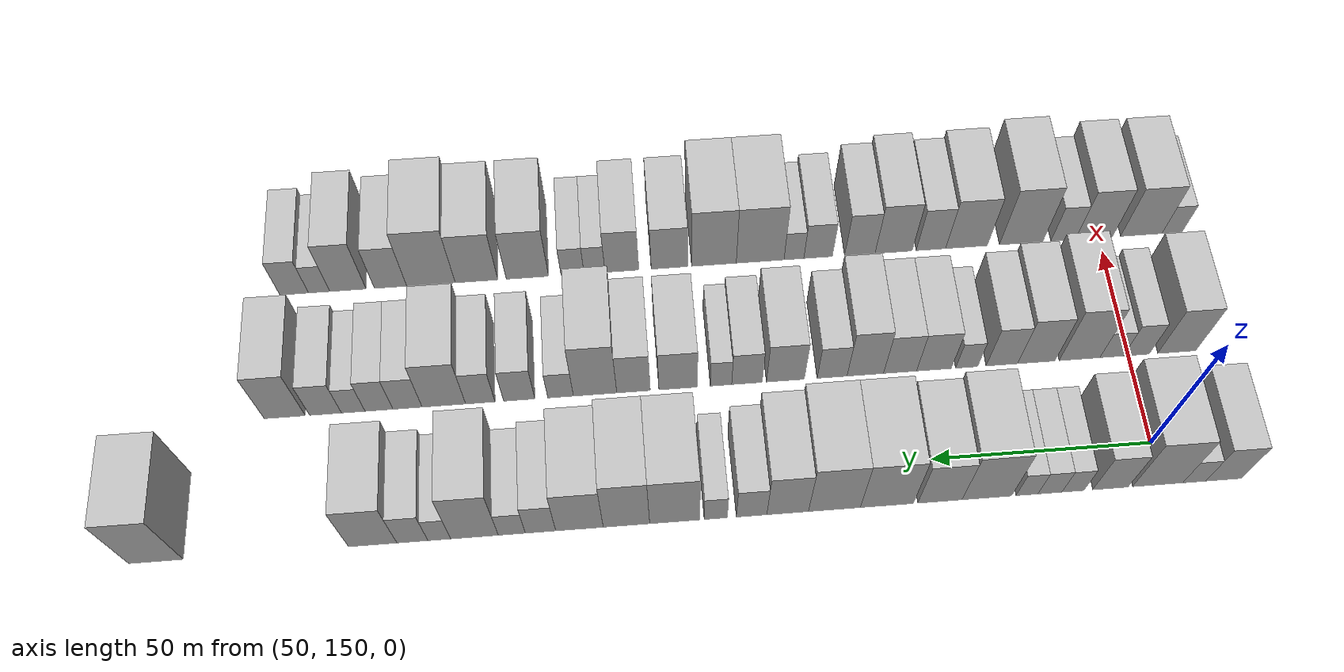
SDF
<sdf version="1.6">
 <world name="default">
  <model name="building_54">
   <static>1</static>
   <pose>50.0000 135.7376 0 0.000000 0.000000 0.000000</pose>
   <link name="link">
    <pose>0 0 9.00 0 0 0</pose>
    <collision name="collision"><geometry><box><size>20.0000 8.0993 18.0000</size></box></geometry></collision>
    <visual name="visual">
     <cast_shadows>0</cast_shadows>
     <geometry><box><size>20.0000 8.0993 18.0000</size></box></geometry>
     <material>
      <script>
       <uri>model://HANNAS_wall/materials/scripts</uri>
       <uri>model://HANNAS_wall/materials/textures</uri>
       <name>vrc/HANNAS_wall</name>
      </script>
     </material>
    </visual>
   </link>
  </model>
  <model name="building_55">
   <static>1</static>
   <pose>50.0000 142.3807 0 0.000000 0.000000 0.000000</pose>
   <link name="link">
    <pose>0 0 6.00 0 0 0</pose>
    <collision name="collision"><geometry><box><size>20.0000 5.1868 12.0000</size></box></geometry></collision>
    <visual name="visual">
     <cast_shadows>0</cast_shadows>
     <geometry><box><size>20.0000 5.1868 12.0000</size></box></geometry>
     <material>
      <script>
       <uri>model://HANNAS_wall/materials/scripts</uri>
       <uri>model://HANNAS_wall/materials/textures</uri>
       <name>vrc/HANNAS_wall</name>
      </script>
     </material>
    </visual>
   </link>
  </model>
  <model name="building_56">
   <static>1</static>
   <pose>50.0000 150.6809 0 0.000000 0.000000 0.000000</pose>
   <link name="link">
    <pose>0 0 12.00 0 0 0</pose>
    <collision name="collision"><geometry><box><size>20.0000 11.4138 24.0000</size></box></geometry></collision>
    <visual name="visual">
     <cast_shadows>0</cast_shadows>
     <geometry><box><size>20.0000 11.4138 24.0000</size></box></geometry>
     <material>
      <script>
       <uri>model://HANNAS_wall/materials/scripts</uri>
       <uri>model://HANNAS_wall/materials/textures</uri>
       <name>vrc/HANNAS_wall</name>
      </script>
     </material>
    </visual>
   </link>
  </model>
  <model name="building_57">
   <static>1</static>
   <pose>50.0000 161.3846 0 0.000000 0.000000 0.000000</pose>
   <link name="link">
    <pose>0 0 9.00 0 0 0</pose>
    <collision name="collision"><geometry><box><size>20.0000 7.9936 18.0000</size></box></geometry></collision>
    <visual name="visual">
     <cast_shadows>0</cast_shadows>
     <geometry><box><size>20.0000 7.9936 18.0000</size></box></geometry>
     <material>
      <script>
       <uri>model://HANNAS_wall/materials/scripts</uri>
       <uri>model://HANNAS_wall/materials/textures</uri>
       <name>vrc/HANNAS_wall</name>
      </script>
     </material>
    </visual>
   </link>
  </model>
  <model name="building_58">
   <static>1</static>
   <pose>50.0000 169.8554 0 0.000000 0.000000 0.000000</pose>
   <link name="link">
    <pose>0 0 6.00 0 0 0</pose>
    <collision name="collision"><geometry><box><size>20.0000 4.9480 12.0000</size></box></geometry></collision>
    <visual name="visual">
     <cast_shadows>0</cast_shadows>
     <geometry><box><size>20.0000 4.9480 12.0000</size></box></geometry>
     <material>
      <script>
       <uri>model://HANNAS_wall/materials/scripts</uri>
       <uri>model://HANNAS_wall/materials/textures</uri>
       <name>vrc/HANNAS_wall</name>
      </script>
     </material>
    </visual>
   </link>
  </model>
  <model name="building_59">
   <static>1</static>
   <pose>50.0000 175.0355 0 0.000000 0.000000 0.000000</pose>
   <link name="link">
    <pose>0 0 6.00 0 0 0</pose>
    <collision name="collision"><geometry><box><size>20.0000 5.4122 12.0000</size></box></geometry></collision>
    <visual name="visual">
     <cast_shadows>0</cast_shadows>
     <geometry><box><size>20.0000 5.4122 12.0000</size></box></geometry>
     <material>
      <script>
       <uri>model://HANNAS_wall/materials/scripts</uri>
       <uri>model://HANNAS_wall/materials/textures</uri>
       <name>vrc/HANNAS_wall</name>
      </script>
     </material>
    </visual>
   </link>
  </model>
  <model name="building_60">
   <static>1</static>
   <pose>50.0000 180.1963 0 0.000000 0.000000 0.000000</pose>
   <link name="link">
    <pose>0 0 6.00 0 0 0</pose>
    <collision name="collision"><geometry><box><size>20.0000 4.9094 12.0000</size></box></geometry></collision>
    <visual name="visual">
     <cast_shadows>0</cast_shadows>
     <geometry><box><size>20.0000 4.9094 12.0000</size></box></geometry>
     <material>
      <script>
       <uri>model://HANNAS_wall/materials/scripts</uri>
       <uri>model://HANNAS_wall/materials/textures</uri>
       <name>vrc/HANNAS_wall</name>
      </script>
     </material>
    </visual>
   </link>
  </model>
  <model name="building_61">
   <static>1</static>
   <pose>50.0000 189.2256 0 0.000000 0.000000 0.000000</pose>
   <link name="link">
    <pose>0 0 12.00 0 0 0</pose>
    <collision name="collision"><geometry><box><size>20.0000 11.1491 24.0000</size></box></geometry></collision>
    <visual name="visual">
     <cast_shadows>0</cast_shadows>
     <geometry><box><size>20.0000 11.1491 24.0000</size></box></geometry>
     <material>
      <script>
       <uri>model://HANNAS_wall/materials/scripts</uri>
       <uri>model://HANNAS_wall/materials/textures</uri>
       <name>vrc/HANNAS_wall</name>
      </script>
     </material>
    </visual>
   </link>
  </model>
  <model name="building_62">
   <static>1</static>
   <pose>50.0000 199.7369 0 0.000000 0.000000 0.000000</pose>
   <link name="link">
    <pose>0 0 10.50 0 0 0</pose>
    <collision name="collision"><geometry><box><size>20.0000 9.8735 21.0000</size></box></geometry></collision>
    <visual name="visual">
     <cast_shadows>0</cast_shadows>
     <geometry><box><size>20.0000 9.8735 21.0000</size></box></geometry>
     <material>
      <script>
       <uri>model://HANNAS_wall/materials/scripts</uri>
       <uri>model://HANNAS_wall/materials/textures</uri>
       <name>vrc/HANNAS_wall</name>
      </script>
     </material>
    </visual>
   </link>
  </model>
  <model name="building_63">
   <static>1</static>
   <pose>50.0000 211.5797 0 0.000000 0.000000 0.000000</pose>
   <link name="link">
    <pose>0 0 12.00 0 0 0</pose>
    <collision name="collision"><geometry><box><size>20.0000 11.8122 24.0000</size></box></geometry></collision>
    <visual name="visual">
     <cast_shadows>0</cast_shadows>
     <geometry><box><size>20.0000 11.8122 24.0000</size></box></geometry>
     <material>
      <script>
       <uri>model://HANNAS_wall/materials/scripts</uri>
       <uri>model://HANNAS_wall/materials/textures</uri>
       <name>vrc/HANNAS_wall</name>
      </script>
     </material>
    </visual>
   </link>
  </model>
  <model name="building_64">
   <static>1</static>
   <pose>50.0000 223.2693 0 0.000000 0.000000 0.000000</pose>
   <link name="link">
    <pose>0 0 12.00 0 0 0</pose>
    <collision name="collision"><geometry><box><size>20.0000 11.5669 24.0000</size></box></geometry></collision>
    <visual name="visual">
     <cast_shadows>0</cast_shadows>
     <geometry><box><size>20.0000 11.5669 24.0000</size></box></geometry>
     <material>
      <script>
       <uri>model://HANNAS_wall/materials/scripts</uri>
       <uri>model://HANNAS_wall/materials/textures</uri>
       <name>vrc/HANNAS_wall</name>
      </script>
     </material>
    </visual>
   </link>
  </model>
  <model name="building_65">
   <static>1</static>
   <pose>50.0000 233.6656 0 0.000000 0.000000 0.000000</pose>
   <link name="link">
    <pose>0 0 10.50 0 0 0</pose>
    <collision name="collision"><geometry><box><size>20.0000 9.2259 21.0000</size></box></geometry></collision>
    <visual name="visual">
     <cast_shadows>0</cast_shadows>
     <geometry><box><size>20.0000 9.2259 21.0000</size></box></geometry>
     <material>
      <script>
       <uri>model://HANNAS_wall/materials/scripts</uri>
       <uri>model://HANNAS_wall/materials/textures</uri>
       <name>vrc/HANNAS_wall</name>
      </script>
     </material>
    </visual>
   </link>
  </model>
  <model name="building_66">
   <static>1</static>
   <pose>50.0000 241.6552 0 0.000000 0.000000 0.000000</pose>
   <link name="link">
    <pose>0 0 7.50 0 0 0</pose>
    <collision name="collision"><geometry><box><size>20.0000 6.7533 15.0000</size></box></geometry></collision>
    <visual name="visual">
     <cast_shadows>0</cast_shadows>
     <geometry><box><size>20.0000 6.7533 15.0000</size></box></geometry>
     <material>
      <script>
       <uri>model://HANNAS_wall/materials/scripts</uri>
       <uri>model://HANNAS_wall/materials/textures</uri>
       <name>vrc/HANNAS_wall</name>
      </script>
     </material>
    </visual>
   </link>
  </model>
  <model name="building_67">
   <static>1</static>
   <pose>50.0000 249.5808 0 0.000000 0.000000 0.000000</pose>
   <link name="link">
    <pose>0 0 6.00 0 0 0</pose>
    <collision name="collision"><geometry><box><size>20.0000 5.0978 12.0000</size></box></geometry></collision>
    <visual name="visual">
     <cast_shadows>0</cast_shadows>
     <geometry><box><size>20.0000 5.0978 12.0000</size></box></geometry>
     <material>
      <script>
       <uri>model://HANNAS_wall/materials/scripts</uri>
       <uri>model://HANNAS_wall/materials/textures</uri>
       <name>vrc/HANNAS_wall</name>
      </script>
     </material>
    </visual>
   </link>
  </model>
  <model name="building_68">
   <static>1</static>
   <pose>50.0000 258.6403 0 0.000000 0.000000 0.000000</pose>
   <link name="link">
    <pose>0 0 12.00 0 0 0</pose>
    <collision name="collision"><geometry><box><size>20.0000 11.0211 24.0000</size></box></geometry></collision>
    <visual name="visual">
     <cast_shadows>0</cast_shadows>
     <geometry><box><size>20.0000 11.0211 24.0000</size></box></geometry>
     <material>
      <script>
       <uri>model://HANNAS_wall/materials/scripts</uri>
       <uri>model://HANNAS_wall/materials/textures</uri>
       <name>vrc/HANNAS_wall</name>
      </script>
     </material>
    </visual>
   </link>
  </model>
  <model name="building_69">
   <static>1</static>
   <pose>50.0000 269.2612 0 0.000000 0.000000 0.000000</pose>
   <link name="link">
    <pose>0 0 12.00 0 0 0</pose>
    <collision name="collision"><geometry><box><size>20.0000 10.2207 24.0000</size></box></geometry></collision>
    <visual name="visual">
     <cast_shadows>0</cast_shadows>
     <geometry><box><size>20.0000 10.2207 24.0000</size></box></geometry>
     <material>
      <script>
       <uri>model://HANNAS_wall/materials/scripts</uri>
       <uri>model://HANNAS_wall/materials/textures</uri>
       <name>vrc/HANNAS_wall</name>
      </script>
     </material>
    </visual>
   </link>
  </model>
  <model name="building_70">
   <static>1</static>
   <pose>50.0000 279.5826 0 0.000000 0.000000 0.000000</pose>
   <link name="link">
    <pose>0 0 10.50 0 0 0</pose>
    <collision name="collision"><geometry><box><size>20.0000 10.4221 21.0000</size></box></geometry></collision>
    <visual name="visual">
     <cast_shadows>0</cast_shadows>
     <geometry><box><size>20.0000 10.4221 21.0000</size></box></geometry>
     <material>
      <script>
       <uri>model://HANNAS_wall/materials/scripts</uri>
       <uri>model://HANNAS_wall/materials/textures</uri>
       <name>vrc/HANNAS_wall</name>
      </script>
     </material>
    </visual>
   </link>
  </model>
  <model name="building_71">
   <static>1</static>
   <pose>50.0000 288.1135 0 0.000000 0.000000 0.000000</pose>
   <link name="link">
    <pose>0 0 7.50 0 0 0</pose>
    <collision name="collision"><geometry><box><size>20.0000 6.6397 15.0000</size></box></geometry></collision>
    <visual name="visual">
     <cast_shadows>0</cast_shadows>
     <geometry><box><size>20.0000 6.6397 15.0000</size></box></geometry>
     <material>
      <script>
       <uri>model://HANNAS_wall/materials/scripts</uri>
       <uri>model://HANNAS_wall/materials/textures</uri>
       <name>vrc/HANNAS_wall</name>
      </script>
     </material>
    </visual>
   </link>
  </model>
  <model name="building_72">
   <static>1</static>
   <pose>50.0000 294.3930 0 0.000000 0.000000 0.000000</pose>
   <link name="link">
    <pose>0 0 6.00 0 0 0</pose>
    <collision name="collision"><geometry><box><size>20.0000 5.9195 12.0000</size></box></geometry></collision>
    <visual name="visual">
     <cast_shadows>0</cast_shadows>
     <geometry><box><size>20.0000 5.9195 12.0000</size></box></geometry>
     <material>
      <script>
       <uri>model://HANNAS_wall/materials/scripts</uri>
       <uri>model://HANNAS_wall/materials/textures</uri>
       <name>vrc/HANNAS_wall</name>
      </script>
     </material>
    </visual>
   </link>
  </model>
  <model name="building_73">
   <static>1</static>
   <pose>50.0000 302.5616 0 0.000000 0.000000 0.000000</pose>
   <link name="link">
    <pose>0 0 12.00 0 0 0</pose>
    <collision name="collision"><geometry><box><size>20.0000 10.4178 24.0000</size></box></geometry></collision>
    <visual name="visual">
     <cast_shadows>0</cast_shadows>
     <geometry><box><size>20.0000 10.4178 24.0000</size></box></geometry>
     <material>
      <script>
       <uri>model://HANNAS_wall/materials/scripts</uri>
       <uri>model://HANNAS_wall/materials/textures</uri>
       <name>vrc/HANNAS_wall</name>
      </script>
     </material>
    </visual>
   </link>
  </model>
  <model name="building_74">
   <static>1</static>
   <pose>50.0000 310.2300 0 0.000000 0.000000 0.000000</pose>
   <link name="link">
    <pose>0 0 6.00 0 0 0</pose>
    <collision name="collision"><geometry><box><size>20.0000 4.9190 12.0000</size></box></geometry></collision>
    <visual name="visual">
     <cast_shadows>0</cast_shadows>
     <geometry><box><size>20.0000 4.9190 12.0000</size></box></geometry>
     <material>
      <script>
       <uri>model://HANNAS_wall/materials/scripts</uri>
       <uri>model://HANNAS_wall/materials/textures</uri>
       <name>vrc/HANNAS_wall</name>
      </script>
     </material>
    </visual>
   </link>
  </model>
  <model name="building_75">
   <static>1</static>
   <pose>50.0000 316.0661 0 0.000000 0.000000 0.000000</pose>
   <link name="link">
    <pose>0 0 7.50 0 0 0</pose>
    <collision name="collision"><geometry><box><size>20.0000 6.7531 15.0000</size></box></geometry></collision>
    <visual name="visual">
     <cast_shadows>0</cast_shadows>
     <geometry><box><size>20.0000 6.7531 15.0000</size></box></geometry>
     <material>
      <script>
       <uri>model://HANNAS_wall/materials/scripts</uri>
       <uri>model://HANNAS_wall/materials/textures</uri>
       <name>vrc/HANNAS_wall</name>
      </script>
     </material>
    </visual>
   </link>
  </model>
  <model name="building_76">
   <static>1</static>
   <pose>50.0000 324.6897 0 0.000000 0.000000 0.000000</pose>
   <link name="link">
    <pose>0 0 10.50 0 0 0</pose>
    <collision name="collision"><geometry><box><size>20.0000 10.4943 21.0000</size></box></geometry></collision>
    <visual name="visual">
     <cast_shadows>0</cast_shadows>
     <geometry><box><size>20.0000 10.4943 21.0000</size></box></geometry>
     <material>
      <script>
       <uri>model://HANNAS_wall/materials/scripts</uri>
       <uri>model://HANNAS_wall/materials/textures</uri>
       <name>vrc/HANNAS_wall</name>
      </script>
     </material>
    </visual>
   </link>
  </model>
  <model name="building_77">
   <static>1</static>
   <pose>50.0000 371.5125 0 0.000000 0.000000 0.000000</pose>
   <link name="link">
    <pose>0 0 12.00 0 0 0</pose>
    <collision name="collision"><geometry><box><size>20.0000 11.7171 24.0000</size></box></geometry></collision>
    <visual name="visual">
     <cast_shadows>0</cast_shadows>
     <geometry><box><size>20.0000 11.7171 24.0000</size></box></geometry>
     <material>
      <script>
       <uri>model://HANNAS_wall/materials/scripts</uri>
       <uri>model://HANNAS_wall/materials/textures</uri>
       <name>vrc/HANNAS_wall</name>
      </script>
     </material>
    </visual>
   </link>
  </model>
  <model name="building_128">
   <static>1</static>
   <pose>82.0000 138.5199 0 0.000000 0.000000 0.000000</pose>
   <link name="link">
    <pose>0 0 10.50 0 0 0</pose>
    <collision name="collision"><geometry><box><size>20.0000 9.0458 21.0000</size></box></geometry></collision>
    <visual name="visual">
     <cast_shadows>0</cast_shadows>
     <geometry><box><size>20.0000 9.0458 21.0000</size></box></geometry>
     <material>
      <script>
       <uri>model://HANNAS_wall/materials/scripts</uri>
       <uri>model://HANNAS_wall/materials/textures</uri>
       <name>vrc/HANNAS_wall</name>
      </script>
     </material>
    </visual>
   </link>
  </model>
  <model name="building_129">
   <static>1</static>
   <pose>82.0000 148.0989 0 0.000000 0.000000 0.000000</pose>
   <link name="link">
    <pose>0 0 7.50 0 0 0</pose>
    <collision name="collision"><geometry><box><size>20.0000 6.1123 15.0000</size></box></geometry></collision>
    <visual name="visual">
     <cast_shadows>0</cast_shadows>
     <geometry><box><size>20.0000 6.1123 15.0000</size></box></geometry>
     <material>
      <script>
       <uri>model://HANNAS_wall/materials/scripts</uri>
       <uri>model://HANNAS_wall/materials/textures</uri>
       <name>vrc/HANNAS_wall</name>
      </script>
     </material>
    </visual>
   </link>
  </model>
  <model name="building_130">
   <static>1</static>
   <pose>82.0000 153.9497 0 0.000000 0.000000 0.000000</pose>
   <link name="link">
    <pose>0 0 6.00 0 0 0</pose>
    <collision name="collision"><geometry><box><size>20.0000 5.5893 12.0000</size></box></geometry></collision>
    <visual name="visual">
     <cast_shadows>0</cast_shadows>
     <geometry><box><size>20.0000 5.5893 12.0000</size></box></geometry>
     <material>
      <script>
       <uri>model://HANNAS_wall/materials/scripts</uri>
       <uri>model://HANNAS_wall/materials/textures</uri>
       <name>vrc/HANNAS_wall</name>
      </script>
     </material>
    </visual>
   </link>
  </model>
  <model name="building_131">
   <static>1</static>
   <pose>82.0000 161.5656 0 0.000000 0.000000 0.000000</pose>
   <link name="link">
    <pose>0 0 12.00 0 0 0</pose>
    <collision name="collision"><geometry><box><size>20.0000 9.6425 24.0000</size></box></geometry></collision>
    <visual name="visual">
     <cast_shadows>0</cast_shadows>
     <geometry><box><size>20.0000 9.6425 24.0000</size></box></geometry>
     <material>
      <script>
       <uri>model://HANNAS_wall/materials/scripts</uri>
       <uri>model://HANNAS_wall/materials/textures</uri>
       <name>vrc/HANNAS_wall</name>
      </script>
     </material>
    </visual>
   </link>
  </model>
  <model name="building_132">
   <static>1</static>
   <pose>82.0000 171.7931 0 0.000000 0.000000 0.000000</pose>
   <link name="link">
    <pose>0 0 10.50 0 0 0</pose>
    <collision name="collision"><geometry><box><size>20.0000 8.8125 21.0000</size></box></geometry></collision>
    <visual name="visual">
     <cast_shadows>0</cast_shadows>
     <geometry><box><size>20.0000 8.8125 21.0000</size></box></geometry>
     <material>
      <script>
       <uri>model://HANNAS_wall/materials/scripts</uri>
       <uri>model://HANNAS_wall/materials/textures</uri>
       <name>vrc/HANNAS_wall</name>
      </script>
     </material>
    </visual>
   </link>
  </model>
  <model name="building_133">
   <static>1</static>
   <pose>82.0000 179.9020 0 0.000000 0.000000 0.000000</pose>
   <link name="link">
    <pose>0 0 9.00 0 0 0</pose>
    <collision name="collision"><geometry><box><size>20.0000 7.4052 18.0000</size></box></geometry></collision>
    <visual name="visual">
     <cast_shadows>0</cast_shadows>
     <geometry><box><size>20.0000 7.4052 18.0000</size></box></geometry>
     <material>
      <script>
       <uri>model://HANNAS_wall/materials/scripts</uri>
       <uri>model://HANNAS_wall/materials/textures</uri>
       <name>vrc/HANNAS_wall</name>
      </script>
     </material>
    </visual>
   </link>
  </model>
  <model name="building_134">
   <static>1</static>
   <pose>82.0000 188.2013 0 0.000000 0.000000 0.000000</pose>
   <link name="link">
    <pose>0 0 6.00 0 0 0</pose>
    <collision name="collision"><geometry><box><size>20.0000 5.1934 12.0000</size></box></geometry></collision>
    <visual name="visual">
     <cast_shadows>0</cast_shadows>
     <geometry><box><size>20.0000 5.1934 12.0000</size></box></geometry>
     <material>
      <script>
       <uri>model://HANNAS_wall/materials/scripts</uri>
       <uri>model://HANNAS_wall/materials/textures</uri>
       <name>vrc/HANNAS_wall</name>
      </script>
     </material>
    </visual>
   </link>
  </model>
  <model name="building_135">
   <static>1</static>
   <pose>82.0000 195.8727 0 0.000000 0.000000 0.000000</pose>
   <link name="link">
    <pose>0 0 9.00 0 0 0</pose>
    <collision name="collision"><geometry><box><size>20.0000 8.1493 18.0000</size></box></geometry></collision>
    <visual name="visual">
     <cast_shadows>0</cast_shadows>
     <geometry><box><size>20.0000 8.1493 18.0000</size></box></geometry>
     <material>
      <script>
       <uri>model://HANNAS_wall/materials/scripts</uri>
       <uri>model://HANNAS_wall/materials/textures</uri>
       <name>vrc/HANNAS_wall</name>
      </script>
     </material>
    </visual>
   </link>
  </model>
  <model name="building_136">
   <static>1</static>
   <pose>82.0000 203.8156 0 0.000000 0.000000 0.000000</pose>
   <link name="link">
    <pose>0 0 9.00 0 0 0</pose>
    <collision name="collision"><geometry><box><size>20.0000 7.7365 18.0000</size></box></geometry></collision>
    <visual name="visual">
     <cast_shadows>0</cast_shadows>
     <geometry><box><size>20.0000 7.7365 18.0000</size></box></geometry>
     <material>
      <script>
       <uri>model://HANNAS_wall/materials/scripts</uri>
       <uri>model://HANNAS_wall/materials/textures</uri>
       <name>vrc/HANNAS_wall</name>
      </script>
     </material>
    </visual>
   </link>
  </model>
  <model name="building_137">
   <static>1</static>
   <pose>82.0000 211.9540 0 0.000000 0.000000 0.000000</pose>
   <link name="link">
    <pose>0 0 10.50 0 0 0</pose>
    <collision name="collision"><geometry><box><size>20.0000 8.5403 21.0000</size></box></geometry></collision>
    <visual name="visual">
     <cast_shadows>0</cast_shadows>
     <geometry><box><size>20.0000 8.5403 21.0000</size></box></geometry>
     <material>
      <script>
       <uri>model://HANNAS_wall/materials/scripts</uri>
       <uri>model://HANNAS_wall/materials/textures</uri>
       <name>vrc/HANNAS_wall</name>
      </script>
     </material>
    </visual>
   </link>
  </model>
  <model name="building_138">
   <static>1</static>
   <pose>82.0000 219.7043 0 0.000000 0.000000 0.000000</pose>
   <link name="link">
    <pose>0 0 7.50 0 0 0</pose>
    <collision name="collision"><geometry><box><size>20.0000 6.9603 15.0000</size></box></geometry></collision>
    <visual name="visual">
     <cast_shadows>0</cast_shadows>
     <geometry><box><size>20.0000 6.9603 15.0000</size></box></geometry>
     <material>
      <script>
       <uri>model://HANNAS_wall/materials/scripts</uri>
       <uri>model://HANNAS_wall/materials/textures</uri>
       <name>vrc/HANNAS_wall</name>
      </script>
     </material>
    </visual>
   </link>
  </model>
  <model name="building_139">
   <static>1</static>
   <pose>82.0000 230.5792 0 0.000000 0.000000 0.000000</pose>
   <link name="link">
    <pose>0 0 9.00 0 0 0</pose>
    <collision name="collision"><geometry><box><size>20.0000 8.7895 18.0000</size></box></geometry></collision>
    <visual name="visual">
     <cast_shadows>0</cast_shadows>
     <geometry><box><size>20.0000 8.7895 18.0000</size></box></geometry>
     <material>
      <script>
       <uri>model://HANNAS_wall/materials/scripts</uri>
       <uri>model://HANNAS_wall/materials/textures</uri>
       <name>vrc/HANNAS_wall</name>
      </script>
     </material>
    </visual>
   </link>
  </model>
  <model name="building_140">
   <static>1</static>
   <pose>82.0000 239.5101 0 0.000000 0.000000 0.000000</pose>
   <link name="link">
    <pose>0 0 7.50 0 0 0</pose>
    <collision name="collision"><geometry><box><size>20.0000 7.0722 15.0000</size></box></geometry></collision>
    <visual name="visual">
     <cast_shadows>0</cast_shadows>
     <geometry><box><size>20.0000 7.0722 15.0000</size></box></geometry>
     <material>
      <script>
       <uri>model://HANNAS_wall/materials/scripts</uri>
       <uri>model://HANNAS_wall/materials/textures</uri>
       <name>vrc/HANNAS_wall</name>
      </script>
     </material>
    </visual>
   </link>
  </model>
  <model name="building_141">
   <static>1</static>
   <pose>82.0000 245.5180 0 0.000000 0.000000 0.000000</pose>
   <link name="link">
    <pose>0 0 6.00 0 0 0</pose>
    <collision name="collision"><geometry><box><size>20.0000 4.9435 12.0000</size></box></geometry></collision>
    <visual name="visual">
     <cast_shadows>0</cast_shadows>
     <geometry><box><size>20.0000 4.9435 12.0000</size></box></geometry>
     <material>
      <script>
       <uri>model://HANNAS_wall/materials/scripts</uri>
       <uri>model://HANNAS_wall/materials/textures</uri>
       <name>vrc/HANNAS_wall</name>
      </script>
     </material>
    </visual>
   </link>
  </model>
  <model name="building_142">
   <static>1</static>
   <pose>82.0000 255.4361 0 0.000000 0.000000 0.000000</pose>
   <link name="link">
    <pose>0 0 9.00 0 0 0</pose>
    <collision name="collision"><geometry><box><size>20.0000 8.8928 18.0000</size></box></geometry></collision>
    <visual name="visual">
     <cast_shadows>0</cast_shadows>
     <geometry><box><size>20.0000 8.8928 18.0000</size></box></geometry>
     <material>
      <script>
       <uri>model://HANNAS_wall/materials/scripts</uri>
       <uri>model://HANNAS_wall/materials/textures</uri>
       <name>vrc/HANNAS_wall</name>
      </script>
     </material>
    </visual>
   </link>
  </model>
  <model name="building_143">
   <static>1</static>
   <pose>82.0000 265.7482 0 0.000000 0.000000 0.000000</pose>
   <link name="link">
    <pose>0 0 9.00 0 0 0</pose>
    <collision name="collision"><geometry><box><size>20.0000 7.7314 18.0000</size></box></geometry></collision>
    <visual name="visual">
     <cast_shadows>0</cast_shadows>
     <geometry><box><size>20.0000 7.7314 18.0000</size></box></geometry>
     <material>
      <script>
       <uri>model://HANNAS_wall/materials/scripts</uri>
       <uri>model://HANNAS_wall/materials/textures</uri>
       <name>vrc/HANNAS_wall</name>
      </script>
     </material>
    </visual>
   </link>
  </model>
  <model name="building_144">
   <static>1</static>
   <pose>82.0000 274.6100 0 0.000000 0.000000 0.000000</pose>
   <link name="link">
    <pose>0 0 12.00 0 0 0</pose>
    <collision name="collision"><geometry><box><size>20.0000 9.9922 24.0000</size></box></geometry></collision>
    <visual name="visual">
     <cast_shadows>0</cast_shadows>
     <geometry><box><size>20.0000 9.9922 24.0000</size></box></geometry>
     <material>
      <script>
       <uri>model://HANNAS_wall/materials/scripts</uri>
       <uri>model://HANNAS_wall/materials/textures</uri>
       <name>vrc/HANNAS_wall</name>
      </script>
     </material>
    </visual>
   </link>
  </model>
  <model name="building_145">
   <static>1</static>
   <pose>82.0000 282.5368 0 0.000000 0.000000 0.000000</pose>
   <link name="link">
    <pose>0 0 6.00 0 0 0</pose>
    <collision name="collision"><geometry><box><size>20.0000 5.8615 12.0000</size></box></geometry></collision>
    <visual name="visual">
     <cast_shadows>0</cast_shadows>
     <geometry><box><size>20.0000 5.8615 12.0000</size></box></geometry>
     <material>
      <script>
       <uri>model://HANNAS_wall/materials/scripts</uri>
       <uri>model://HANNAS_wall/materials/textures</uri>
       <name>vrc/HANNAS_wall</name>
      </script>
     </material>
    </visual>
   </link>
  </model>
  <model name="building_146">
   <static>1</static>
   <pose>82.0000 292.0342 0 0.000000 0.000000 0.000000</pose>
   <link name="link">
    <pose>0 0 7.50 0 0 0</pose>
    <collision name="collision"><geometry><box><size>20.0000 7.1332 15.0000</size></box></geometry></collision>
    <visual name="visual">
     <cast_shadows>0</cast_shadows>
     <geometry><box><size>20.0000 7.1332 15.0000</size></box></geometry>
     <material>
      <script>
       <uri>model://HANNAS_wall/materials/scripts</uri>
       <uri>model://HANNAS_wall/materials/textures</uri>
       <name>vrc/HANNAS_wall</name>
      </script>
     </material>
    </visual>
   </link>
  </model>
  <model name="building_147">
   <static>1</static>
   <pose>82.0000 300.9629 0 0.000000 0.000000 0.000000</pose>
   <link name="link">
    <pose>0 0 7.50 0 0 0</pose>
    <collision name="collision"><geometry><box><size>20.0000 6.7242 15.0000</size></box></geometry></collision>
    <visual name="visual">
     <cast_shadows>0</cast_shadows>
     <geometry><box><size>20.0000 6.7242 15.0000</size></box></geometry>
     <material>
      <script>
       <uri>model://HANNAS_wall/materials/scripts</uri>
       <uri>model://HANNAS_wall/materials/textures</uri>
       <name>vrc/HANNAS_wall</name>
      </script>
     </material>
    </visual>
   </link>
  </model>
  <model name="building_148">
   <static>1</static>
   <pose>82.0000 309.2893 0 0.000000 0.000000 0.000000</pose>
   <link name="link">
    <pose>0 0 10.50 0 0 0</pose>
    <collision name="collision"><geometry><box><size>20.0000 9.9285 21.0000</size></box></geometry></collision>
    <visual name="visual">
     <cast_shadows>0</cast_shadows>
     <geometry><box><size>20.0000 9.9285 21.0000</size></box></geometry>
     <material>
      <script>
       <uri>model://HANNAS_wall/materials/scripts</uri>
       <uri>model://HANNAS_wall/materials/textures</uri>
       <name>vrc/HANNAS_wall</name>
      </script>
     </material>
    </visual>
   </link>
  </model>
  <model name="building_149">
   <static>1</static>
   <pose>82.0000 317.5921 0 0.000000 0.000000 0.000000</pose>
   <link name="link">
    <pose>0 0 7.50 0 0 0</pose>
    <collision name="collision"><geometry><box><size>20.0000 6.6773 15.0000</size></box></geometry></collision>
    <visual name="visual">
     <cast_shadows>0</cast_shadows>
     <geometry><box><size>20.0000 6.6773 15.0000</size></box></geometry>
     <material>
      <script>
       <uri>model://HANNAS_wall/materials/scripts</uri>
       <uri>model://HANNAS_wall/materials/textures</uri>
       <name>vrc/HANNAS_wall</name>
      </script>
     </material>
    </visual>
   </link>
  </model>
  <model name="building_150">
   <static>1</static>
   <pose>82.0000 324.0981 0 0.000000 0.000000 0.000000</pose>
   <link name="link">
    <pose>0 0 7.50 0 0 0</pose>
    <collision name="collision"><geometry><box><size>20.0000 6.3346 15.0000</size></box></geometry></collision>
    <visual name="visual">
     <cast_shadows>0</cast_shadows>
     <geometry><box><size>20.0000 6.3346 15.0000</size></box></geometry>
     <material>
      <script>
       <uri>model://HANNAS_wall/materials/scripts</uri>
       <uri>model://HANNAS_wall/materials/textures</uri>
       <name>vrc/HANNAS_wall</name>
      </script>
     </material>
    </visual>
   </link>
  </model>
  <model name="building_151">
   <static>1</static>
   <pose>82.0000 329.9432 0 0.000000 0.000000 0.000000</pose>
   <link name="link">
    <pose>0 0 6.00 0 0 0</pose>
    <collision name="collision"><geometry><box><size>20.0000 5.3556 12.0000</size></box></geometry></collision>
    <visual name="visual">
     <cast_shadows>0</cast_shadows>
     <geometry><box><size>20.0000 5.3556 12.0000</size></box></geometry>
     <material>
      <script>
       <uri>model://HANNAS_wall/materials/scripts</uri>
       <uri>model://HANNAS_wall/materials/textures</uri>
       <name>vrc/HANNAS_wall</name>
      </script>
     </material>
    </visual>
   </link>
  </model>
  <model name="building_152">
   <static>1</static>
   <pose>82.0000 336.2288 0 0.000000 0.000000 0.000000</pose>
   <link name="link">
    <pose>0 0 7.50 0 0 0</pose>
    <collision name="collision"><geometry><box><size>20.0000 7.2157 15.0000</size></box></geometry></collision>
    <visual name="visual">
     <cast_shadows>0</cast_shadows>
     <geometry><box><size>20.0000 7.2157 15.0000</size></box></geometry>
     <material>
      <script>
       <uri>model://HANNAS_wall/materials/scripts</uri>
       <uri>model://HANNAS_wall/materials/textures</uri>
       <name>vrc/HANNAS_wall</name>
      </script>
     </material>
    </visual>
   </link>
  </model>
  <model name="building_153">
   <static>1</static>
   <pose>82.0000 345.4838 0 0.000000 0.000000 0.000000</pose>
   <link name="link">
    <pose>0 0 10.50 0 0 0</pose>
    <collision name="collision"><geometry><box><size>20.0000 9.2943 21.0000</size></box></geometry></collision>
    <visual name="visual">
     <cast_shadows>0</cast_shadows>
     <geometry><box><size>20.0000 9.2943 21.0000</size></box></geometry>
     <material>
      <script>
       <uri>model://HANNAS_wall/materials/scripts</uri>
       <uri>model://HANNAS_wall/materials/textures</uri>
       <name>vrc/HANNAS_wall</name>
      </script>
     </material>
    </visual>
   </link>
  </model>
  <model name="building_199">
   <static>1</static>
   <pose>114.0000 131.8280 0 0.000000 0.000000 0.000000</pose>
   <link name="link">
    <pose>0 0 6.00 0 0 0</pose>
    <collision name="collision"><geometry><box><size>20.0000 5.0102 12.0000</size></box></geometry></collision>
    <visual name="visual">
     <cast_shadows>0</cast_shadows>
     <geometry><box><size>20.0000 5.0102 12.0000</size></box></geometry>
     <material>
      <script>
       <uri>model://HANNAS_wall/materials/scripts</uri>
       <uri>model://HANNAS_wall/materials/textures</uri>
       <name>vrc/HANNAS_wall</name>
      </script>
     </material>
    </visual>
   </link>
  </model>
  <model name="building_200">
   <static>1</static>
   <pose>114.0000 139.4755 0 0.000000 0.000000 0.000000</pose>
   <link name="link">
    <pose>0 0 10.50 0 0 0</pose>
    <collision name="collision"><geometry><box><size>20.0000 10.2848 21.0000</size></box></geometry></collision>
    <visual name="visual">
     <cast_shadows>0</cast_shadows>
     <geometry><box><size>20.0000 10.2848 21.0000</size></box></geometry>
     <material>
      <script>
       <uri>model://HANNAS_wall/materials/scripts</uri>
       <uri>model://HANNAS_wall/materials/textures</uri>
       <name>vrc/HANNAS_wall</name>
      </script>
     </material>
    </visual>
   </link>
  </model>
  <model name="building_201">
   <static>1</static>
   <pose>114.0000 151.2100 0 0.000000 0.000000 0.000000</pose>
   <link name="link">
    <pose>0 0 10.50 0 0 0</pose>
    <collision name="collision"><geometry><box><size>20.0000 9.1841 21.0000</size></box></geometry></collision>
    <visual name="visual">
     <cast_shadows>0</cast_shadows>
     <geometry><box><size>20.0000 9.1841 21.0000</size></box></geometry>
     <material>
      <script>
       <uri>model://HANNAS_wall/materials/scripts</uri>
       <uri>model://HANNAS_wall/materials/textures</uri>
       <name>vrc/HANNAS_wall</name>
      </script>
     </material>
    </visual>
   </link>
  </model>
  <model name="building_202">
   <static>1</static>
   <pose>114.0000 158.8384 0 0.000000 0.000000 0.000000</pose>
   <link name="link">
    <pose>0 0 7.50 0 0 0</pose>
    <collision name="collision"><geometry><box><size>20.0000 6.0727 15.0000</size></box></geometry></collision>
    <visual name="visual">
     <cast_shadows>0</cast_shadows>
     <geometry><box><size>20.0000 6.0727 15.0000</size></box></geometry>
     <material>
      <script>
       <uri>model://HANNAS_wall/materials/scripts</uri>
       <uri>model://HANNAS_wall/materials/textures</uri>
       <name>vrc/HANNAS_wall</name>
      </script>
     </material>
    </visual>
   </link>
  </model>
  <model name="building_203">
   <static>1</static>
   <pose>114.0000 169.2146 0 0.000000 0.000000 0.000000</pose>
   <link name="link">
    <pose>0 0 12.00 0 0 0</pose>
    <collision name="collision"><geometry><box><size>20.0000 10.6797 24.0000</size></box></geometry></collision>
    <visual name="visual">
     <cast_shadows>0</cast_shadows>
     <geometry><box><size>20.0000 10.6797 24.0000</size></box></geometry>
     <material>
      <script>
       <uri>model://HANNAS_wall/materials/scripts</uri>
       <uri>model://HANNAS_wall/materials/textures</uri>
       <name>vrc/HANNAS_wall</name>
      </script>
     </material>
    </visual>
   </link>
  </model>
  <model name="building_204">
   <static>1</static>
   <pose>114.0000 182.6649 0 0.000000 0.000000 0.000000</pose>
   <link name="link">
    <pose>0 0 10.50 0 0 0</pose>
    <collision name="collision"><geometry><box><size>20.0000 10.2209 21.0000</size></box></geometry></collision>
    <visual name="visual">
     <cast_shadows>0</cast_shadows>
     <geometry><box><size>20.0000 10.2209 21.0000</size></box></geometry>
     <material>
      <script>
       <uri>model://HANNAS_wall/materials/scripts</uri>
       <uri>model://HANNAS_wall/materials/textures</uri>
       <name>vrc/HANNAS_wall</name>
      </script>
     </material>
    </visual>
   </link>
  </model>
  <model name="building_205">
   <static>1</static>
   <pose>114.0000 191.3980 0 0.000000 0.000000 0.000000</pose>
   <link name="link">
    <pose>0 0 9.00 0 0 0</pose>
    <collision name="collision"><geometry><box><size>20.0000 7.2454 18.0000</size></box></geometry></collision>
    <visual name="visual">
     <cast_shadows>0</cast_shadows>
     <geometry><box><size>20.0000 7.2454 18.0000</size></box></geometry>
     <material>
      <script>
       <uri>model://HANNAS_wall/materials/scripts</uri>
       <uri>model://HANNAS_wall/materials/textures</uri>
       <name>vrc/HANNAS_wall</name>
      </script>
     </material>
    </visual>
   </link>
  </model>
  <model name="building_206">
   <static>1</static>
   <pose>114.0000 200.5641 0 0.000000 0.000000 0.000000</pose>
   <link name="link">
    <pose>0 0 10.50 0 0 0</pose>
    <collision name="collision"><geometry><box><size>20.0000 9.0868 21.0000</size></box></geometry></collision>
    <visual name="visual">
     <cast_shadows>0</cast_shadows>
     <geometry><box><size>20.0000 9.0868 21.0000</size></box></geometry>
     <material>
      <script>
       <uri>model://HANNAS_wall/materials/scripts</uri>
       <uri>model://HANNAS_wall/materials/textures</uri>
       <name>vrc/HANNAS_wall</name>
      </script>
     </material>
    </visual>
   </link>
  </model>
  <model name="building_207">
   <static>1</static>
   <pose>114.0000 208.8223 0 0.000000 0.000000 0.000000</pose>
   <link name="link">
    <pose>0 0 9.00 0 0 0</pose>
    <collision name="collision"><geometry><box><size>20.0000 7.4295 18.0000</size></box></geometry></collision>
    <visual name="visual">
     <cast_shadows>0</cast_shadows>
     <geometry><box><size>20.0000 7.4295 18.0000</size></box></geometry>
     <material>
      <script>
       <uri>model://HANNAS_wall/materials/scripts</uri>
       <uri>model://HANNAS_wall/materials/textures</uri>
       <name>vrc/HANNAS_wall</name>
      </script>
     </material>
    </visual>
   </link>
  </model>
  <model name="building_208">
   <static>1</static>
   <pose>114.0000 219.0113 0 0.000000 0.000000 0.000000</pose>
   <link name="link">
    <pose>0 0 7.50 0 0 0</pose>
    <collision name="collision"><geometry><box><size>20.0000 6.9484 15.0000</size></box></geometry></collision>
    <visual name="visual">
     <cast_shadows>0</cast_shadows>
     <geometry><box><size>20.0000 6.9484 15.0000</size></box></geometry>
     <material>
      <script>
       <uri>model://HANNAS_wall/materials/scripts</uri>
       <uri>model://HANNAS_wall/materials/textures</uri>
       <name>vrc/HANNAS_wall</name>
      </script>
     </material>
    </visual>
   </link>
  </model>
  <model name="building_209">
   <static>1</static>
   <pose>114.0000 224.9043 0 0.000000 0.000000 0.000000</pose>
   <link name="link">
    <pose>0 0 6.00 0 0 0</pose>
    <collision name="collision"><geometry><box><size>20.0000 4.8376 12.0000</size></box></geometry></collision>
    <visual name="visual">
     <cast_shadows>0</cast_shadows>
     <geometry><box><size>20.0000 4.8376 12.0000</size></box></geometry>
     <material>
      <script>
       <uri>model://HANNAS_wall/materials/scripts</uri>
       <uri>model://HANNAS_wall/materials/textures</uri>
       <name>vrc/HANNAS_wall</name>
      </script>
     </material>
    </visual>
   </link>
  </model>
  <model name="building_210">
   <static>1</static>
   <pose>114.0000 233.1242 0 0.000000 0.000000 0.000000</pose>
   <link name="link">
    <pose>0 0 12.00 0 0 0</pose>
    <collision name="collision"><geometry><box><size>20.0000 11.6021 24.0000</size></box></geometry></collision>
    <visual name="visual">
     <cast_shadows>0</cast_shadows>
     <geometry><box><size>20.0000 11.6021 24.0000</size></box></geometry>
     <material>
      <script>
       <uri>model://HANNAS_wall/materials/scripts</uri>
       <uri>model://HANNAS_wall/materials/textures</uri>
       <name>vrc/HANNAS_wall</name>
      </script>
     </material>
    </visual>
   </link>
  </model>
  <model name="building_211">
   <static>1</static>
   <pose>114.0000 244.3240 0 0.000000 0.000000 0.000000</pose>
   <link name="link">
    <pose>0 0 12.00 0 0 0</pose>
    <collision name="collision"><geometry><box><size>20.0000 10.7975 24.0000</size></box></geometry></collision>
    <visual name="visual">
     <cast_shadows>0</cast_shadows>
     <geometry><box><size>20.0000 10.7975 24.0000</size></box></geometry>
     <material>
      <script>
       <uri>model://HANNAS_wall/materials/scripts</uri>
       <uri>model://HANNAS_wall/materials/textures</uri>
       <name>vrc/HANNAS_wall</name>
      </script>
     </material>
    </visual>
   </link>
  </model>
  <model name="building_212">
   <static>1</static>
   <pose>114.0000 255.1207 0 0.000000 0.000000 0.000000</pose>
   <link name="link">
    <pose>0 0 9.00 0 0 0</pose>
    <collision name="collision"><geometry><box><size>20.0000 8.7959 18.0000</size></box></geometry></collision>
    <visual name="visual">
     <cast_shadows>0</cast_shadows>
     <geometry><box><size>20.0000 8.7959 18.0000</size></box></geometry>
     <material>
      <script>
       <uri>model://HANNAS_wall/materials/scripts</uri>
       <uri>model://HANNAS_wall/materials/textures</uri>
       <name>vrc/HANNAS_wall</name>
      </script>
     </material>
    </visual>
   </link>
  </model>
  <model name="building_213">
   <static>1</static>
   <pose>114.0000 266.5948 0 0.000000 0.000000 0.000000</pose>
   <link name="link">
    <pose>0 0 9.00 0 0 0</pose>
    <collision name="collision"><geometry><box><size>20.0000 8.1523 18.0000</size></box></geometry></collision>
    <visual name="visual">
     <cast_shadows>0</cast_shadows>
     <geometry><box><size>20.0000 8.1523 18.0000</size></box></geometry>
     <material>
      <script>
       <uri>model://HANNAS_wall/materials/scripts</uri>
       <uri>model://HANNAS_wall/materials/textures</uri>
       <name>vrc/HANNAS_wall</name>
      </script>
     </material>
    </visual>
   </link>
  </model>
  <model name="building_214">
   <static>1</static>
   <pose>114.0000 273.1971 0 0.000000 0.000000 0.000000</pose>
   <link name="link">
    <pose>0 0 6.00 0 0 0</pose>
    <collision name="collision"><geometry><box><size>20.0000 5.0522 12.0000</size></box></geometry></collision>
    <visual name="visual">
     <cast_shadows>0</cast_shadows>
     <geometry><box><size>20.0000 5.0522 12.0000</size></box></geometry>
     <material>
      <script>
       <uri>model://HANNAS_wall/materials/scripts</uri>
       <uri>model://HANNAS_wall/materials/textures</uri>
       <name>vrc/HANNAS_wall</name>
      </script>
     </material>
    </visual>
   </link>
  </model>
  <model name="building_215">
   <static>1</static>
   <pose>114.0000 278.4877 0 0.000000 0.000000 0.000000</pose>
   <link name="link">
    <pose>0 0 6.00 0 0 0</pose>
    <collision name="collision"><geometry><box><size>20.0000 5.5290 12.0000</size></box></geometry></collision>
    <visual name="visual">
     <cast_shadows>0</cast_shadows>
     <geometry><box><size>20.0000 5.5290 12.0000</size></box></geometry>
     <material>
      <script>
       <uri>model://HANNAS_wall/materials/scripts</uri>
       <uri>model://HANNAS_wall/materials/textures</uri>
       <name>vrc/HANNAS_wall</name>
      </script>
     </material>
    </visual>
   </link>
  </model>
  <model name="building_216">
   <static>1</static>
   <pose>114.0000 289.3363 0 0.000000 0.000000 0.000000</pose>
   <link name="link">
    <pose>0 0 10.50 0 0 0</pose>
    <collision name="collision"><geometry><box><size>20.0000 10.1681 21.0000</size></box></geometry></collision>
    <visual name="visual">
     <cast_shadows>0</cast_shadows>
     <geometry><box><size>20.0000 10.1681 21.0000</size></box></geometry>
     <material>
      <script>
       <uri>model://HANNAS_wall/materials/scripts</uri>
       <uri>model://HANNAS_wall/materials/textures</uri>
       <name>vrc/HANNAS_wall</name>
      </script>
     </material>
    </visual>
   </link>
  </model>
  <model name="building_217">
   <static>1</static>
   <pose>114.0000 301.5282 0 0.000000 0.000000 0.000000</pose>
   <link name="link">
    <pose>0 0 10.50 0 0 0</pose>
    <collision name="collision"><geometry><box><size>20.0000 10.2157 21.0000</size></box></geometry></collision>
    <visual name="visual">
     <cast_shadows>0</cast_shadows>
     <geometry><box><size>20.0000 10.2157 21.0000</size></box></geometry>
     <material>
      <script>
       <uri>model://HANNAS_wall/materials/scripts</uri>
       <uri>model://HANNAS_wall/materials/textures</uri>
       <name>vrc/HANNAS_wall</name>
      </script>
     </material>
    </visual>
   </link>
  </model>
  <model name="building_218">
   <static>1</static>
   <pose>114.0000 312.4360 0 0.000000 0.000000 0.000000</pose>
   <link name="link">
    <pose>0 0 12.00 0 0 0</pose>
    <collision name="collision"><geometry><box><size>20.0000 11.5998 24.0000</size></box></geometry></collision>
    <visual name="visual">
     <cast_shadows>0</cast_shadows>
     <geometry><box><size>20.0000 11.5998 24.0000</size></box></geometry>
     <material>
      <script>
       <uri>model://HANNAS_wall/materials/scripts</uri>
       <uri>model://HANNAS_wall/materials/textures</uri>
       <name>vrc/HANNAS_wall</name>
      </script>
     </material>
    </visual>
   </link>
  </model>
  <model name="building_219">
   <static>1</static>
   <pose>114.0000 322.0786 0 0.000000 0.000000 0.000000</pose>
   <link name="link">
    <pose>0 0 9.00 0 0 0</pose>
    <collision name="collision"><geometry><box><size>20.0000 7.6855 18.0000</size></box></geometry></collision>
    <visual name="visual">
     <cast_shadows>0</cast_shadows>
     <geometry><box><size>20.0000 7.6855 18.0000</size></box></geometry>
     <material>
      <script>
       <uri>model://HANNAS_wall/materials/scripts</uri>
       <uri>model://HANNAS_wall/materials/textures</uri>
       <name>vrc/HANNAS_wall</name>
      </script>
     </material>
    </visual>
   </link>
  </model>
  <model name="building_220">
   <static>1</static>
   <pose>114.0000 332.2376 0 0.000000 0.000000 0.000000</pose>
   <link name="link">
    <pose>0 0 10.50 0 0 0</pose>
    <collision name="collision"><geometry><box><size>20.0000 8.6326 21.0000</size></box></geometry></collision>
    <visual name="visual">
     <cast_shadows>0</cast_shadows>
     <geometry><box><size>20.0000 8.6326 21.0000</size></box></geometry>
     <material>
      <script>
       <uri>model://HANNAS_wall/materials/scripts</uri>
       <uri>model://HANNAS_wall/materials/textures</uri>
       <name>vrc/HANNAS_wall</name>
      </script>
     </material>
    </visual>
   </link>
  </model>
  <model name="building_221">
   <static>1</static>
   <pose>114.0000 339.0732 0 0.000000 0.000000 0.000000</pose>
   <link name="link">
    <pose>0 0 6.00 0 0 0</pose>
    <collision name="collision"><geometry><box><size>20.0000 5.0386 12.0000</size></box></geometry></collision>
    <visual name="visual">
     <cast_shadows>0</cast_shadows>
     <geometry><box><size>20.0000 5.0386 12.0000</size></box></geometry>
     <material>
      <script>
       <uri>model://HANNAS_wall/materials/scripts</uri>
       <uri>model://HANNAS_wall/materials/textures</uri>
       <name>vrc/HANNAS_wall</name>
      </script>
     </material>
    </visual>
   </link>
  </model>
  <model name="building_222">
   <static>1</static>
   <pose>114.0000 344.9933 0 0.000000 0.000000 0.000000</pose>
   <link name="link">
    <pose>0 0 7.50 0 0 0</pose>
    <collision name="collision"><geometry><box><size>20.0000 6.8017 15.0000</size></box></geometry></collision>
    <visual name="visual">
     <cast_shadows>0</cast_shadows>
     <geometry><box><size>20.0000 6.8017 15.0000</size></box></geometry>
     <material>
      <script>
       <uri>model://HANNAS_wall/materials/scripts</uri>
       <uri>model://HANNAS_wall/materials/textures</uri>
       <name>vrc/HANNAS_wall</name>
      </script>
     </material>
    </visual>
   </link>
  </model>
 </world>
</sdf>
